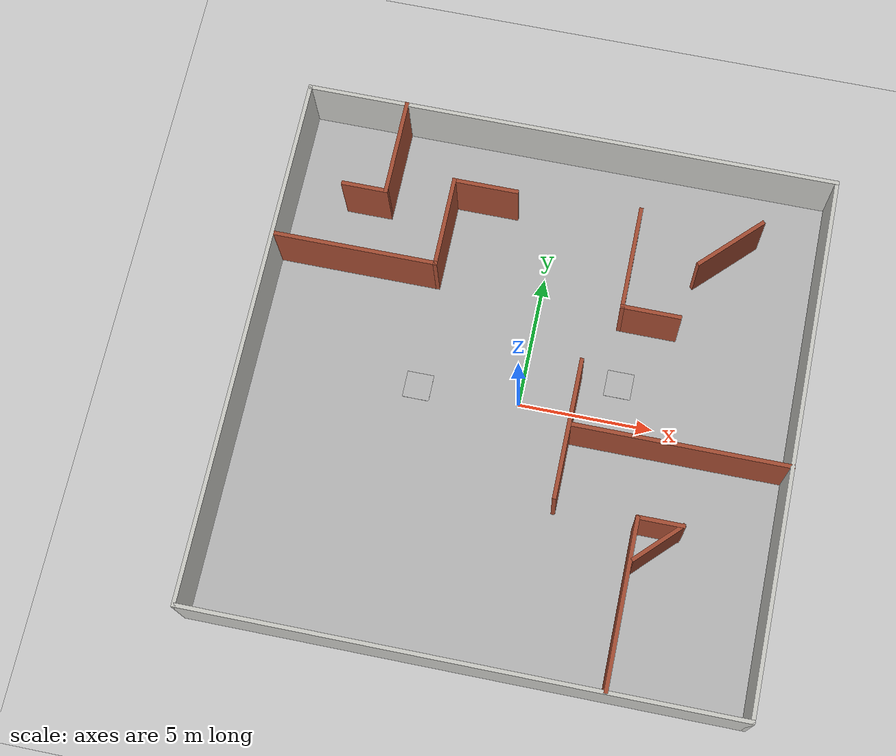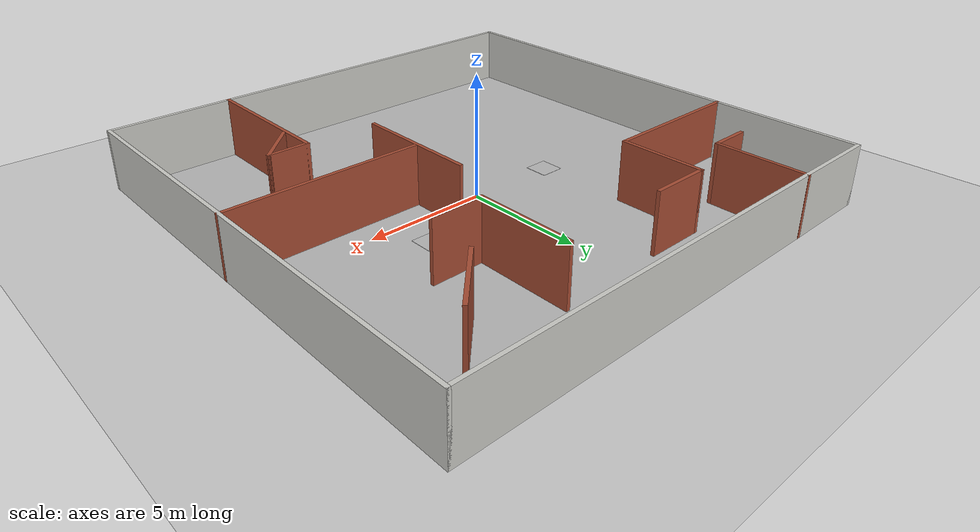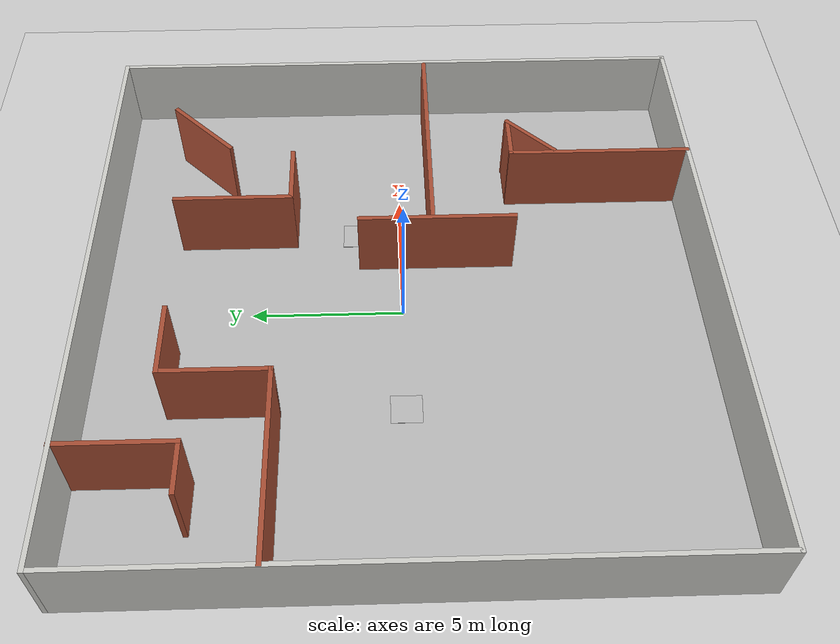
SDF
<?xml version="1.0" ?>
<sdf version="1.5">
  <world name="default">
    <!-- 动力学库 -->
    <physics type='ode'>
      <gravity>0 0 -9.8066</gravity>
      <ode>
        <solver>
          <type>quick</type>
          <iters>10</iters>
          <sor>1.3</sor>
          <use_dynamic_moi_rescaling>0</use_dynamic_moi_rescaling>
        </solver>
        <constraints>
          <cfm>0.00001</cfm>
          <erp>0.2</erp>
          <contact_max_correcting_vel>1000</contact_max_correcting_vel>
          <contact_surface_layer>0.01</contact_surface_layer>
        </constraints>
      </ode>
      <max_step_size>0.004</max_step_size>
      <real_time_factor>1.0</real_time_factor>
      <real_time_update_rate>250</real_time_update_rate>
      <magnetic_field>6.0e-6 2.3e-5 -4.2e-5</magnetic_field>
    </physics>

    <!-- 初始视角 -->
    <gui fullscreen='0'>
      <camera name='user_camera'>
        <pose>-13.0 0.0 12.0 0 0.75 0.0</pose>
        <view_controller>orbit</view_controller>
      </camera>
    </gui>

    <!-- 光源 -->
    <light type="directional" name="sun">
      <cast_shadows>false</cast_shadows>
      <pose>0 0 100 0 0 0</pose>
      <diffuse>0.8 0.8 0.8 1</diffuse>
      <specular>0.9 0.9 0.9 1</specular>
      <attenuation>
        <range>1000</range>
        <constant>0.9</constant>
        <linear>0.01</linear>
        <quadratic>0.001</quadratic>
      </attenuation>
      <direction>0.2 0.2 -0.9</direction>
    </light>

    <scene>
      <shadows>0</shadows>
    </scene>

    <!-- A ground plane -->
    <include>
      <uri>model://ground_plane</uri>
    </include>

    <include>
      <uri>model://room3</uri>
    </include>

    <!-- 装饰 -->
    <model name='texture'>
      <static>true</static>
      <link name="sunray">
        <pose frame=''> 0.0 0.0 0.0 0.0 0.0 0.0</pose>
        <visual name="visual">
            <cast_shadows>false</cast_shadows>
            <geometry>
              <box>
                <size>20.0 20.0 0.01</size>
              </box>
            </geometry>
            <material>
              <script>
                <uri>model://texture.material</uri>
                <name>sunray_world_1</name>
              </script>
            </material>
        </visual>
      </link>
    </model>

    <model name='H_takeoff'>
      <static>true</static>
      <link name="H_t">
        <pose frame=''> -3.8 0 0.01 0.0 0.0 0.0</pose>
        <visual name="visual">
            <cast_shadows>false</cast_shadows>
            <geometry>
              <box>
                <size>1.0 1.0 0.01</size>
              </box>
            </geometry>
            <material>
              <script>
                <uri>model://texture.material</uri>
                <name>H_1</name>
              </script>
            </material>
        </visual>
      </link>
    </model>

    <model name='H_land'>
      <static>true</static>
      <link name="H_l">
        <pose frame=''> 3.5 1.5 0.01 0.0 0.0 0.0</pose>
        <visual name="visual">
            <cast_shadows>false</cast_shadows>
            <geometry>
              <box>
                <size>1.0 1.0 0.01</size>
              </box>
            </geometry>
            <material>
              <script>
                <uri>model://texture.material</uri>
                <name>H_1</name>
              </script>
            </material>
        </visual>
      </link>
    </model>

  </world>
</sdf>

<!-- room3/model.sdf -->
<sdf version='1.7'>
  <model name='room3'>
    <pose>0.005 0.005 0 0 -0 0</pose>
    <link name='Wall_0'>
      <collision name='Wall_0_Collision'>
        <geometry>
          <box>
            <size>20.15 0.15 2.5</size>
          </box>
        </geometry>
        <pose>0 0 1.25 0 -0 0</pose>
      </collision>
      <visual name='Wall_0_Visual'>
        <pose>0 0 1.25 0 -0 0</pose>
        <geometry>
          <box>
            <size>20.15 0.15 2.5</size>
          </box>
        </geometry>
        <material>
          <script>
            <uri>file://media/materials/scripts/gazebo.material</uri>
            <name>Gazebo/CeilingTiled</name>
          </script>
          <ambient>1 1 1 1</ambient>
        </material>
        <meta>
          <layer>0</layer>
        </meta>
      </visual>
      <pose>-0.005 9.995 0 0 -0 0</pose>
    </link>
    <link name='Wall_13'>
      <collision name='Wall_13_Collision'>
        <geometry>
          <box>
            <size>6.25 0.15 2.5</size>
          </box>
        </geometry>
        <pose>0 0 1.25 0 -0 0</pose>
      </collision>
      <visual name='Wall_13_Visual'>
        <pose>0 0 1.25 0 -0 0</pose>
        <geometry>
          <box>
            <size>6.25 0.15 2.5</size>
          </box>
        </geometry>
        <material>
          <script>
            <uri>file://media/materials/scripts/gazebo.material</uri>
            <name>Gazebo/Bricks</name>
          </script>
          <ambient>1 1 1 1</ambient>
        </material>
        <meta>
          <layer>0</layer>
        </meta>
      </visual>
      <pose>-6.945 3.965 0 0 -0 0</pose>
    </link>
    <link name='Wall_14'>
      <collision name='Wall_14_Collision'>
        <geometry>
          <box>
            <size>3.5 0.15 2.5</size>
          </box>
        </geometry>
        <pose>0 0 1.25 0 -0 0</pose>
      </collision>
      <visual name='Wall_14_Visual'>
        <pose>0 0 1.25 0 -0 0</pose>
        <geometry>
          <box>
            <size>3.5 0.15 2.5</size>
          </box>
        </geometry>
        <material>
          <script>
            <uri>file://media/materials/scripts/gazebo.material</uri>
            <name>Gazebo/Bricks</name>
          </script>
          <ambient>1 1 1 1</ambient>
        </material>
        <meta>
          <layer>0</layer>
        </meta>
      </visual>
      <pose>-3.895 5.64 0 0 -0 1.5708</pose>
    </link>
    <link name='Wall_19'>
      <collision name='Wall_19_Collision'>
        <geometry>
          <box>
            <size>2.5 0.15 2.5</size>
          </box>
        </geometry>
        <pose>0 0 1.25 0 -0 0</pose>
      </collision>
      <visual name='Wall_19_Visual'>
        <pose>0 0 1.25 0 -0 0</pose>
        <geometry>
          <box>
            <size>2.5 0.15 2.5</size>
          </box>
        </geometry>
        <material>
          <script>
            <uri>file://media/materials/scripts/gazebo.material</uri>
            <name>Gazebo/Bricks</name>
          </script>
          <ambient>1 1 1 1</ambient>
        </material>
        <meta>
          <layer>0</layer>
        </meta>
      </visual>
      <pose>-2.72 7.315 0 0 -0 0</pose>
    </link>
    <link name='Wall_2'>
      <collision name='Wall_2_Collision'>
        <geometry>
          <box>
            <size>20.15 0.15 2.5</size>
          </box>
        </geometry>
        <pose>0 0 1.25 0 -0 0</pose>
      </collision>
      <visual name='Wall_2_Visual'>
        <pose>0 0 1.25 0 -0 0</pose>
        <geometry>
          <box>
            <size>20.15 0.15 2.5</size>
          </box>
        </geometry>
        <material>
          <script>
            <uri>file://media/materials/scripts/gazebo.material</uri>
            <name>Gazebo/CeilingTiled</name>
          </script>
          <ambient>1 1 1 1</ambient>
        </material>
        <meta>
          <layer>0</layer>
        </meta>
      </visual>
      <pose>-10.005 -0.005 0 0 -0 -1.5708</pose>
    </link>
    <link name='Wall_21'>
      <collision name='Wall_21_Collision'>
        <geometry>
          <box>
            <size>4 0.15 2.5</size>
          </box>
        </geometry>
        <pose>0 0 1.25 0 -0 0</pose>
      </collision>
      <visual name='Wall_21_Visual'>
        <pose>0 0 1.25 0 -0 0</pose>
        <geometry>
          <box>
            <size>4 0.15 2.5</size>
          </box>
        </geometry>
        <material>
          <script>
            <uri>file://media/materials/scripts/gazebo.material</uri>
            <name>Gazebo/Bricks</name>
          </script>
          <ambient>1 1 1 1</ambient>
        </material>
        <meta>
          <layer>0</layer>
        </meta>
      </visual>
      <pose>3.085 5.58 0 0 -0 -1.5708</pose>
    </link>
    <link name='Wall_22'>
      <collision name='Wall_22_Collision'>
        <geometry>
          <box>
            <size>2.25 0.15 2.5</size>
          </box>
        </geometry>
        <pose>0 0 1.25 0 -0 0</pose>
      </collision>
      <visual name='Wall_22_Visual'>
        <pose>0 0 1.25 0 -0 0</pose>
        <geometry>
          <box>
            <size>2.25 0.15 2.5</size>
          </box>
        </geometry>
        <material>
          <script>
            <uri>file://media/materials/scripts/gazebo.material</uri>
            <name>Gazebo/Bricks</name>
          </script>
          <ambient>1 1 1 1</ambient>
        </material>
        <meta>
          <layer>0</layer>
        </meta>
      </visual>
      <pose>4.135 3.655 0 0 -0 0</pose>
    </link>
    <link name='Wall_24'>
      <collision name='Wall_24_Collision'>
        <geometry>
          <box>
            <size>3 0.15 2.5</size>
          </box>
        </geometry>
        <pose>0 0 1.25 0 -0 0</pose>
      </collision>
      <visual name='Wall_24_Visual'>
        <pose>0 0 1.25 0 -0 0</pose>
        <geometry>
          <box>
            <size>3 0.15 2.5</size>
          </box>
        </geometry>
        <material>
          <script>
            <uri>file://media/materials/scripts/gazebo.material</uri>
            <name>Gazebo/Bricks</name>
          </script>
          <ambient>1 1 1 1</ambient>
        </material>
        <meta>
          <layer>0</layer>
        </meta>
      </visual>
      <pose>6.53737 6.85737 0 0 -0 -2.35619</pose>
    </link>
    <link name='Wall_28'>
      <collision name='Wall_28_Collision'>
        <geometry>
          <box>
            <size>6.25 0.15 2.5</size>
          </box>
        </geometry>
        <pose>0 0 1.25 0 -0 0</pose>
      </collision>
      <visual name='Wall_28_Visual'>
        <pose>0 0 1.25 0 -0 0</pose>
        <geometry>
          <box>
            <size>6.25 0.15 2.5</size>
          </box>
        </geometry>
        <material>
          <script>
            <uri>file://media/materials/scripts/gazebo.material</uri>
            <name>Gazebo/Bricks</name>
          </script>
          <ambient>1 1 1 1</ambient>
        </material>
        <meta>
          <layer>0</layer>
        </meta>
      </visual>
      <pose>4.995 -6.925 0 0 -0 1.5708</pose>
    </link>
    <link name='Wall_29'>
      <collision name='Wall_29_Collision'>
        <geometry>
          <box>
            <size>1.75 0.15 2.5</size>
          </box>
        </geometry>
        <pose>0 0 1.25 0 -0 0</pose>
      </collision>
      <visual name='Wall_29_Visual'>
        <pose>0 0 1.25 0 -0 0</pose>
        <geometry>
          <box>
            <size>1.75 0.15 2.5</size>
          </box>
        </geometry>
        <material>
          <script>
            <uri>file://media/materials/scripts/gazebo.material</uri>
            <name>Gazebo/Bricks</name>
          </script>
          <ambient>1 1 1 1</ambient>
        </material>
        <meta>
          <layer>0</layer>
        </meta>
      </visual>
      <pose>5.795 -3.875 0 0 -0 0</pose>
    </link>
    <link name='Wall_3'>
      <collision name='Wall_3_Collision'>
        <geometry>
          <box>
            <size>20.15 0.15 2.5</size>
          </box>
        </geometry>
        <pose>0 0 1.25 0 -0 0</pose>
      </collision>
      <visual name='Wall_3_Visual'>
        <pose>0 0 1.25 0 -0 0</pose>
        <geometry>
          <box>
            <size>20.15 0.15 2.5</size>
          </box>
        </geometry>
        <material>
          <script>
            <uri>file://media/materials/scripts/gazebo.material</uri>
            <name>Gazebo/CeilingTiled</name>
          </script>
          <ambient>1 1 1 1</ambient>
        </material>
        <meta>
          <layer>0</layer>
        </meta>
      </visual>
      <pose>-0.005 -10.005 0 0 -0 0</pose>
    </link>
    <link name='Wall_30'>
      <collision name='Wall_30_Collision'>
        <geometry>
          <box>
            <size>2.25 0.15 2.5</size>
          </box>
        </geometry>
        <pose>0 0 1.25 0 -0 0</pose>
      </collision>
      <visual name='Wall_30_Visual'>
        <pose>0 0 1.25 0 -0 0</pose>
        <geometry>
          <box>
            <size>2.25 0.15 2.5</size>
          </box>
        </geometry>
        <material>
          <script>
            <uri>file://media/materials/scripts/gazebo.material</uri>
            <name>Gazebo/Bricks</name>
          </script>
          <ambient>1 1 1 1</ambient>
        </material>
        <meta>
          <layer>0</layer>
        </meta>
      </visual>
      <pose>5.85254 -4.61746 0 0 -0 -2.35619</pose>
    </link>
    <link name='Wall_32'>
      <collision name='Wall_32_Collision'>
        <geometry>
          <box>
            <size>8 0.15 2.5</size>
          </box>
        </geometry>
        <pose>0 0 1.25 0 -0 0</pose>
      </collision>
      <visual name='Wall_32_Visual'>
        <pose>0 0 1.25 0 -0 0</pose>
        <geometry>
          <box>
            <size>8 0.15 2.5</size>
          </box>
        </geometry>
        <material>
          <script>
            <uri>file://media/materials/scripts/gazebo.material</uri>
            <name>Gazebo/Bricks</name>
          </script>
          <ambient>1 1 1 1</ambient>
        </material>
        <meta>
          <layer>0</layer>
        </meta>
      </visual>
      <pose>6.08 -1.035 0 0 -0 0</pose>
    </link>
    <link name='Wall_35'>
      <collision name='Wall_35_Collision'>
        <geometry>
          <box>
            <size>5.25 0.15 2.5</size>
          </box>
        </geometry>
        <pose>0 0 1.25 0 -0 0</pose>
      </collision>
      <visual name='Wall_35_Visual'>
        <pose>0 0 1.25 0 -0 0</pose>
        <geometry>
          <box>
            <size>5.25 0.15 2.5</size>
          </box>
        </geometry>
        <material>
          <script>
            <uri>file://media/materials/scripts/gazebo.material</uri>
            <name>Gazebo/Bricks</name>
          </script>
          <ambient>1 1 1 1</ambient>
        </material>
        <meta>
          <layer>0</layer>
        </meta>
      </visual>
      <pose>2.025 -1.185 0 0 -0 -1.5708</pose>
    </link>
    <link name='Wall_5'>
      <collision name='Wall_5_Collision'>
        <geometry>
          <box>
            <size>20.15 0.15 2.5</size>
          </box>
        </geometry>
        <pose>0 0 1.25 0 -0 0</pose>
      </collision>
      <visual name='Wall_5_Visual'>
        <pose>0 0 1.25 0 -0 0</pose>
        <geometry>
          <box>
            <size>20.15 0.15 2.5</size>
          </box>
        </geometry>
        <material>
          <script>
            <uri>file://media/materials/scripts/gazebo.material</uri>
            <name>Gazebo/CeilingTiled</name>
          </script>
          <ambient>1 1 1 1</ambient>
        </material>
        <meta>
          <layer>0</layer>
        </meta>
      </visual>
      <pose>9.995 -0.005 0 0 -0 -1.5708</pose>
    </link>
    <link name='Wall_7'>
      <collision name='Wall_7_Collision'>
        <geometry>
          <box>
            <size>3.75 0.15 2.5</size>
          </box>
        </geometry>
        <pose>0 0 1.25 0 -0 0</pose>
      </collision>
      <visual name='Wall_7_Visual'>
        <pose>0 0 1.25 0 -0 0</pose>
        <geometry>
          <box>
            <size>3.75 0.15 2.5</size>
          </box>
        </geometry>
        <material>
          <script>
            <uri>file://media/materials/scripts/gazebo.material</uri>
            <name>Gazebo/Bricks</name>
          </script>
          <ambient>1 1 1 1</ambient>
        </material>
        <meta>
          <layer>0</layer>
        </meta>
      </visual>
      <pose>-6.285 8.205 0 0 -0 -1.5708</pose>
    </link>
    <link name='Wall_8'>
      <collision name='Wall_8_Collision'>
        <geometry>
          <box>
            <size>1.75 0.15 2.5</size>
          </box>
        </geometry>
        <pose>0 0 1.25 0 -0 0</pose>
      </collision>
      <visual name='Wall_8_Visual'>
        <pose>0 0 1.25 0 -0 0</pose>
        <geometry>
          <box>
            <size>1.75 0.15 2.5</size>
          </box>
        </geometry>
        <material>
          <script>
            <uri>file://media/materials/scripts/gazebo.material</uri>
            <name>Gazebo/Bricks</name>
          </script>
          <ambient>1 1 1 1</ambient>
        </material>
        <meta>
          <layer>0</layer>
        </meta>
      </visual>
      <pose>-7.085 6.405 0 0 -0 3.14159</pose>
    </link>
    <static>1</static>
  </model>
</sdf>
